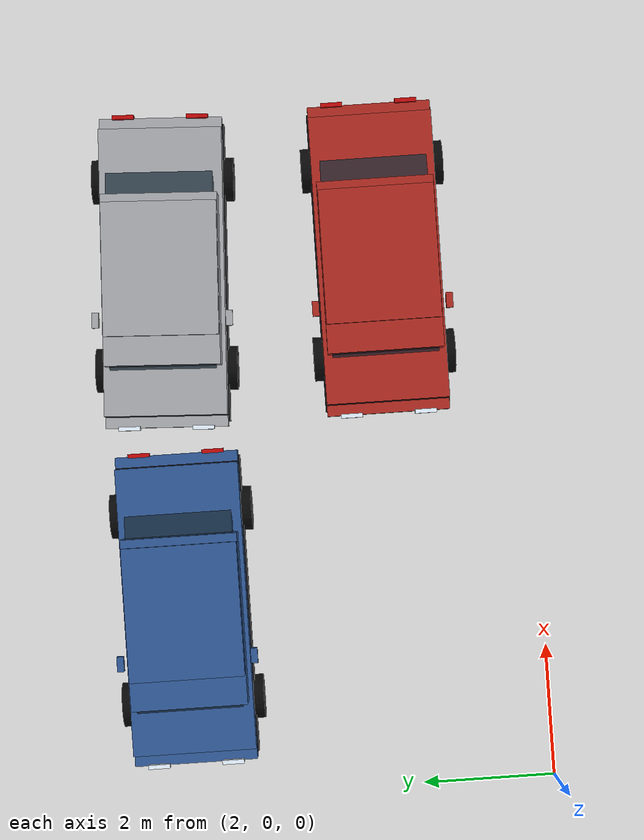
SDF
<sdf version="1.7">
 <world name="ev_car_carrier_deck_world">
  <model name="ev_15">
   <static>true</static>
   <pose>10.0000 2.2000 0.2000 0.0000 0.0000 0.0000</pose>
   <link name="vehicle">
    <collision name="chassis_collision">
     <pose>0.0000 0.0000 0.4800 0.0000 0.0000 0.0000</pose>
     <geometry><box><size>4.45 1.86 0.32</size></box></geometry>
    </collision>
    <visual name="chassis_visual">
     <pose>0.0000 0.0000 0.4800 0.0000 0.0000 0.0000</pose>
     <geometry><box><size>4.45 1.86 0.32</size></box></geometry>
     <material><ambient>0.08 0.08 0.09 1</ambient><diffuse>0.08 0.08 0.09 1</diffuse></material>
    </visual>
    <collision name="lower_body_collision">
     <pose>0.0000 0.0000 0.7800 0.0000 0.0000 0.0000</pose>
     <geometry><box><size>4.25 1.82 0.55</size></box></geometry>
    </collision>
    <visual name="lower_body_visual">
     <pose>0.0000 0.0000 0.7800 0.0000 0.0000 0.0000</pose>
     <geometry><box><size>4.25 1.82 0.55</size></box></geometry>
     <material><ambient>0.68 0.16 0.12 1</ambient><diffuse>0.68 0.16 0.12 1</diffuse></material>
    </visual>
    <collision name="cabin_collision">
     <pose>-0.1500 0.0000 1.2500 0.0000 0.0000 0.0000</pose>
     <geometry><box><size>2.5 1.7 0.65</size></box></geometry>
    </collision>
    <visual name="cabin_visual">
     <pose>-0.1500 0.0000 1.2500 0.0000 0.0000 0.0000</pose>
     <geometry><box><size>2.5 1.7 0.65</size></box></geometry>
     <material><ambient>0.68 0.16 0.12 1</ambient><diffuse>0.68 0.16 0.12 1</diffuse></material>
    </visual>
    <visual name="windshield_visual">
     <pose>-1.0500 0.0000 1.3000 0.0000 -0.4000 0.0000</pose>
     <geometry><box><size>0.7 1.56 0.42</size></box></geometry>
     <material><ambient>0.1 0.17 0.22 0.75</ambient><diffuse>0.1 0.17 0.22 0.75</diffuse></material>
    </visual>
    <visual name="rear_glass_visual">
     <pose>1.1000 0.0000 1.2800 0.0000 0.3800 0.0000</pose>
     <geometry><box><size>0.55 1.56 0.4</size></box></geometry>
     <material><ambient>0.1 0.17 0.22 0.75</ambient><diffuse>0.1 0.17 0.22 0.75</diffuse></material>
    </visual>
    <collision name="roof_collision">
     <pose>0.0000 0.0000 1.6200 0.0000 0.0000 0.0000</pose>
     <geometry><box><size>1.95 1.68 0.1</size></box></geometry>
    </collision>
    <visual name="roof_visual">
     <pose>0.0000 0.0000 1.6200 0.0000 0.0000 0.0000</pose>
     <geometry><box><size>1.95 1.68 0.1</size></box></geometry>
     <material><ambient>0.68 0.16 0.12 1</ambient><diffuse>0.68 0.16 0.12 1</diffuse></material>
    </visual>
    <collision name="battery_pack_collision">
     <pose>0.1000 0.0000 0.3000 0.0000 0.0000 0.0000</pose>
     <geometry><box><size>2.75 1.45 0.16</size></box></geometry>
    </collision>
    <visual name="battery_pack_visual">
     <pose>0.1000 0.0000 0.3000 0.0000 0.0000 0.0000</pose>
     <geometry><box><size>2.75 1.45 0.16</size></box></geometry>
     <material><ambient>0.16 0.18 0.19 1</ambient><diffuse>0.16 0.18 0.19 1</diffuse></material>
    </visual>
    <collision name="front_bumper_collision">
     <pose>-2.2200 0.0000 0.7000 0.0000 0.0000 0.0000</pose>
     <geometry><box><size>0.16 1.82 0.34</size></box></geometry>
    </collision>
    <visual name="front_bumper_visual">
     <pose>-2.2200 0.0000 0.7000 0.0000 0.0000 0.0000</pose>
     <geometry><box><size>0.16 1.82 0.34</size></box></geometry>
     <material><ambient>0.68 0.16 0.12 1</ambient><diffuse>0.68 0.16 0.12 1</diffuse></material>
    </visual>
    <collision name="rear_bumper_collision">
     <pose>2.2200 0.0000 0.7000 0.0000 0.0000 0.0000</pose>
     <geometry><box><size>0.16 1.82 0.34</size></box></geometry>
    </collision>
    <visual name="rear_bumper_visual">
     <pose>2.2200 0.0000 0.7000 0.0000 0.0000 0.0000</pose>
     <geometry><box><size>0.16 1.82 0.34</size></box></geometry>
     <material><ambient>0.68 0.16 0.12 1</ambient><diffuse>0.68 0.16 0.12 1</diffuse></material>
    </visual>
    <collision name="wheel_0_0_collision">
     <pose>-1.4200 -0.9600 0.4300 1.5708 0.0000 0.0000</pose>
     <geometry><cylinder><radius>0.33</radius><length>0.2</length></cylinder></geometry>
    </collision>
    <visual name="wheel_0_0_visual">
     <pose>-1.4200 -0.9600 0.4300 1.5708 0.0000 0.0000</pose>
     <geometry><cylinder><radius>0.33</radius><length>0.2</length></cylinder></geometry>
     <material><ambient>0.035 0.035 0.035 1</ambient><diffuse>0.035 0.035 0.035 1</diffuse></material>
    </visual>
    <visual name="rim_0_0_visual">
     <pose>-1.4200 -0.9600 0.4300 1.5708 0.0000 0.0000</pose>
     <geometry><cylinder><radius>0.18</radius><length>0.205</length></cylinder></geometry>
     <material><ambient>0.45 0.47 0.5 1</ambient><diffuse>0.45 0.47 0.5 1</diffuse></material>
    </visual>
    <collision name="wheel_0_1_collision">
     <pose>-1.4200 0.9600 0.4300 1.5708 0.0000 0.0000</pose>
     <geometry><cylinder><radius>0.33</radius><length>0.2</length></cylinder></geometry>
    </collision>
    <visual name="wheel_0_1_visual">
     <pose>-1.4200 0.9600 0.4300 1.5708 0.0000 0.0000</pose>
     <geometry><cylinder><radius>0.33</radius><length>0.2</length></cylinder></geometry>
     <material><ambient>0.035 0.035 0.035 1</ambient><diffuse>0.035 0.035 0.035 1</diffuse></material>
    </visual>
    <visual name="rim_0_1_visual">
     <pose>-1.4200 0.9600 0.4300 1.5708 0.0000 0.0000</pose>
     <geometry><cylinder><radius>0.18</radius><length>0.205</length></cylinder></geometry>
     <material><ambient>0.45 0.47 0.5 1</ambient><diffuse>0.45 0.47 0.5 1</diffuse></material>
    </visual>
    <collision name="wheel_1_0_collision">
     <pose>1.4200 -0.9600 0.4300 1.5708 0.0000 0.0000</pose>
     <geometry><cylinder><radius>0.33</radius><length>0.2</length></cylinder></geometry>
    </collision>
    <visual name="wheel_1_0_visual">
     <pose>1.4200 -0.9600 0.4300 1.5708 0.0000 0.0000</pose>
     <geometry><cylinder><radius>0.33</radius><length>0.2</length></cylinder></geometry>
     <material><ambient>0.035 0.035 0.035 1</ambient><diffuse>0.035 0.035 0.035 1</diffuse></material>
    </visual>
    <visual name="rim_1_0_visual">
     <pose>1.4200 -0.9600 0.4300 1.5708 0.0000 0.0000</pose>
     <geometry><cylinder><radius>0.18</radius><length>0.205</length></cylinder></geometry>
     <material><ambient>0.45 0.47 0.5 1</ambient><diffuse>0.45 0.47 0.5 1</diffuse></material>
    </visual>
    <collision name="wheel_1_1_collision">
     <pose>1.4200 0.9600 0.4300 1.5708 0.0000 0.0000</pose>
     <geometry><cylinder><radius>0.33</radius><length>0.2</length></cylinder></geometry>
    </collision>
    <visual name="wheel_1_1_visual">
     <pose>1.4200 0.9600 0.4300 1.5708 0.0000 0.0000</pose>
     <geometry><cylinder><radius>0.33</radius><length>0.2</length></cylinder></geometry>
     <material><ambient>0.035 0.035 0.035 1</ambient><diffuse>0.035 0.035 0.035 1</diffuse></material>
    </visual>
    <visual name="rim_1_1_visual">
     <pose>1.4200 0.9600 0.4300 1.5708 0.0000 0.0000</pose>
     <geometry><cylinder><radius>0.18</radius><length>0.205</length></cylinder></geometry>
     <material><ambient>0.45 0.47 0.5 1</ambient><diffuse>0.45 0.47 0.5 1</diffuse></material>
    </visual>
    <visual name="headlight_l_visual">
     <pose>-2.3100 -0.5500 0.8800 0.0000 0.0000 0.0000</pose>
     <geometry><box><size>0.06 0.32 0.18</size></box></geometry>
     <material><ambient>0.9 0.95 1.0 1</ambient><diffuse>0.9 0.95 1.0 1</diffuse></material>
    </visual>
    <visual name="headlight_r_visual">
     <pose>-2.3100 0.5500 0.8800 0.0000 0.0000 0.0000</pose>
     <geometry><box><size>0.06 0.32 0.18</size></box></geometry>
     <material><ambient>0.9 0.95 1.0 1</ambient><diffuse>0.9 0.95 1.0 1</diffuse></material>
    </visual>
    <visual name="taillight_l_visual">
     <pose>2.3100 -0.5500 0.8600 0.0000 0.0000 0.0000</pose>
     <geometry><box><size>0.06 0.32 0.17</size></box></geometry>
     <material><ambient>0.75 0.03 0.03 1</ambient><diffuse>0.75 0.03 0.03 1</diffuse></material>
    </visual>
    <visual name="taillight_r_visual">
     <pose>2.3100 0.5500 0.8600 0.0000 0.0000 0.0000</pose>
     <geometry><box><size>0.06 0.32 0.17</size></box></geometry>
     <material><ambient>0.75 0.03 0.03 1</ambient><diffuse>0.75 0.03 0.03 1</diffuse></material>
    </visual>
    <collision name="mirror_l_collision">
     <pose>-0.7200 -0.9800 1.3000 0.0000 0.0000 0.0000</pose>
     <geometry><box><size>0.22 0.1 0.12</size></box></geometry>
    </collision>
    <visual name="mirror_l_visual">
     <pose>-0.7200 -0.9800 1.3000 0.0000 0.0000 0.0000</pose>
     <geometry><box><size>0.22 0.1 0.12</size></box></geometry>
     <material><ambient>0.68 0.16 0.12 1</ambient><diffuse>0.68 0.16 0.12 1</diffuse></material>
    </visual>
    <collision name="mirror_r_collision">
     <pose>-0.7200 0.9800 1.3000 0.0000 0.0000 0.0000</pose>
     <geometry><box><size>0.22 0.1 0.12</size></box></geometry>
    </collision>
    <visual name="mirror_r_visual">
     <pose>-0.7200 0.9800 1.3000 0.0000 0.0000 0.0000</pose>
     <geometry><box><size>0.22 0.1 0.12</size></box></geometry>
     <material><ambient>0.68 0.16 0.12 1</ambient><diffuse>0.68 0.16 0.12 1</diffuse></material>
    </visual>
   </link>
  </model>
  <model name="ev_19">
   <static>true</static>
   <pose>5.0000 5.4000 0.2000 0.0000 0.0000 0.0000</pose>
   <link name="vehicle">
    <collision name="chassis_collision">
     <pose>0.0000 0.0000 0.4800 0.0000 0.0000 0.0000</pose>
     <geometry><box><size>4.45 1.86 0.32</size></box></geometry>
    </collision>
    <visual name="chassis_visual">
     <pose>0.0000 0.0000 0.4800 0.0000 0.0000 0.0000</pose>
     <geometry><box><size>4.45 1.86 0.32</size></box></geometry>
     <material><ambient>0.08 0.08 0.09 1</ambient><diffuse>0.08 0.08 0.09 1</diffuse></material>
    </visual>
    <collision name="lower_body_collision">
     <pose>0.0000 0.0000 0.7800 0.0000 0.0000 0.0000</pose>
     <geometry><box><size>4.25 1.82 0.55</size></box></geometry>
    </collision>
    <visual name="lower_body_visual">
     <pose>0.0000 0.0000 0.7800 0.0000 0.0000 0.0000</pose>
     <geometry><box><size>4.25 1.82 0.55</size></box></geometry>
     <material><ambient>0.18 0.34 0.58 1</ambient><diffuse>0.18 0.34 0.58 1</diffuse></material>
    </visual>
    <collision name="cabin_collision">
     <pose>-0.1500 0.0000 1.2500 0.0000 0.0000 0.0000</pose>
     <geometry><box><size>2.5 1.7 0.65</size></box></geometry>
    </collision>
    <visual name="cabin_visual">
     <pose>-0.1500 0.0000 1.2500 0.0000 0.0000 0.0000</pose>
     <geometry><box><size>2.5 1.7 0.65</size></box></geometry>
     <material><ambient>0.18 0.34 0.58 1</ambient><diffuse>0.18 0.34 0.58 1</diffuse></material>
    </visual>
    <visual name="windshield_visual">
     <pose>-1.0500 0.0000 1.3000 0.0000 -0.4000 0.0000</pose>
     <geometry><box><size>0.7 1.56 0.42</size></box></geometry>
     <material><ambient>0.1 0.17 0.22 0.75</ambient><diffuse>0.1 0.17 0.22 0.75</diffuse></material>
    </visual>
    <visual name="rear_glass_visual">
     <pose>1.1000 0.0000 1.2800 0.0000 0.3800 0.0000</pose>
     <geometry><box><size>0.55 1.56 0.4</size></box></geometry>
     <material><ambient>0.1 0.17 0.22 0.75</ambient><diffuse>0.1 0.17 0.22 0.75</diffuse></material>
    </visual>
    <collision name="roof_collision">
     <pose>0.0000 0.0000 1.6200 0.0000 0.0000 0.0000</pose>
     <geometry><box><size>1.95 1.68 0.1</size></box></geometry>
    </collision>
    <visual name="roof_visual">
     <pose>0.0000 0.0000 1.6200 0.0000 0.0000 0.0000</pose>
     <geometry><box><size>1.95 1.68 0.1</size></box></geometry>
     <material><ambient>0.18 0.34 0.58 1</ambient><diffuse>0.18 0.34 0.58 1</diffuse></material>
    </visual>
    <collision name="battery_pack_collision">
     <pose>0.1000 0.0000 0.3000 0.0000 0.0000 0.0000</pose>
     <geometry><box><size>2.75 1.45 0.16</size></box></geometry>
    </collision>
    <visual name="battery_pack_visual">
     <pose>0.1000 0.0000 0.3000 0.0000 0.0000 0.0000</pose>
     <geometry><box><size>2.75 1.45 0.16</size></box></geometry>
     <material><ambient>0.16 0.18 0.19 1</ambient><diffuse>0.16 0.18 0.19 1</diffuse></material>
    </visual>
    <collision name="front_bumper_collision">
     <pose>-2.2200 0.0000 0.7000 0.0000 0.0000 0.0000</pose>
     <geometry><box><size>0.16 1.82 0.34</size></box></geometry>
    </collision>
    <visual name="front_bumper_visual">
     <pose>-2.2200 0.0000 0.7000 0.0000 0.0000 0.0000</pose>
     <geometry><box><size>0.16 1.82 0.34</size></box></geometry>
     <material><ambient>0.18 0.34 0.58 1</ambient><diffuse>0.18 0.34 0.58 1</diffuse></material>
    </visual>
    <collision name="rear_bumper_collision">
     <pose>2.2200 0.0000 0.7000 0.0000 0.0000 0.0000</pose>
     <geometry><box><size>0.16 1.82 0.34</size></box></geometry>
    </collision>
    <visual name="rear_bumper_visual">
     <pose>2.2200 0.0000 0.7000 0.0000 0.0000 0.0000</pose>
     <geometry><box><size>0.16 1.82 0.34</size></box></geometry>
     <material><ambient>0.18 0.34 0.58 1</ambient><diffuse>0.18 0.34 0.58 1</diffuse></material>
    </visual>
    <collision name="wheel_0_0_collision">
     <pose>-1.4200 -0.9600 0.4300 1.5708 0.0000 0.0000</pose>
     <geometry><cylinder><radius>0.33</radius><length>0.2</length></cylinder></geometry>
    </collision>
    <visual name="wheel_0_0_visual">
     <pose>-1.4200 -0.9600 0.4300 1.5708 0.0000 0.0000</pose>
     <geometry><cylinder><radius>0.33</radius><length>0.2</length></cylinder></geometry>
     <material><ambient>0.035 0.035 0.035 1</ambient><diffuse>0.035 0.035 0.035 1</diffuse></material>
    </visual>
    <visual name="rim_0_0_visual">
     <pose>-1.4200 -0.9600 0.4300 1.5708 0.0000 0.0000</pose>
     <geometry><cylinder><radius>0.18</radius><length>0.205</length></cylinder></geometry>
     <material><ambient>0.45 0.47 0.5 1</ambient><diffuse>0.45 0.47 0.5 1</diffuse></material>
    </visual>
    <collision name="wheel_0_1_collision">
     <pose>-1.4200 0.9600 0.4300 1.5708 0.0000 0.0000</pose>
     <geometry><cylinder><radius>0.33</radius><length>0.2</length></cylinder></geometry>
    </collision>
    <visual name="wheel_0_1_visual">
     <pose>-1.4200 0.9600 0.4300 1.5708 0.0000 0.0000</pose>
     <geometry><cylinder><radius>0.33</radius><length>0.2</length></cylinder></geometry>
     <material><ambient>0.035 0.035 0.035 1</ambient><diffuse>0.035 0.035 0.035 1</diffuse></material>
    </visual>
    <visual name="rim_0_1_visual">
     <pose>-1.4200 0.9600 0.4300 1.5708 0.0000 0.0000</pose>
     <geometry><cylinder><radius>0.18</radius><length>0.205</length></cylinder></geometry>
     <material><ambient>0.45 0.47 0.5 1</ambient><diffuse>0.45 0.47 0.5 1</diffuse></material>
    </visual>
    <collision name="wheel_1_0_collision">
     <pose>1.4200 -0.9600 0.4300 1.5708 0.0000 0.0000</pose>
     <geometry><cylinder><radius>0.33</radius><length>0.2</length></cylinder></geometry>
    </collision>
    <visual name="wheel_1_0_visual">
     <pose>1.4200 -0.9600 0.4300 1.5708 0.0000 0.0000</pose>
     <geometry><cylinder><radius>0.33</radius><length>0.2</length></cylinder></geometry>
     <material><ambient>0.035 0.035 0.035 1</ambient><diffuse>0.035 0.035 0.035 1</diffuse></material>
    </visual>
    <visual name="rim_1_0_visual">
     <pose>1.4200 -0.9600 0.4300 1.5708 0.0000 0.0000</pose>
     <geometry><cylinder><radius>0.18</radius><length>0.205</length></cylinder></geometry>
     <material><ambient>0.45 0.47 0.5 1</ambient><diffuse>0.45 0.47 0.5 1</diffuse></material>
    </visual>
    <collision name="wheel_1_1_collision">
     <pose>1.4200 0.9600 0.4300 1.5708 0.0000 0.0000</pose>
     <geometry><cylinder><radius>0.33</radius><length>0.2</length></cylinder></geometry>
    </collision>
    <visual name="wheel_1_1_visual">
     <pose>1.4200 0.9600 0.4300 1.5708 0.0000 0.0000</pose>
     <geometry><cylinder><radius>0.33</radius><length>0.2</length></cylinder></geometry>
     <material><ambient>0.035 0.035 0.035 1</ambient><diffuse>0.035 0.035 0.035 1</diffuse></material>
    </visual>
    <visual name="rim_1_1_visual">
     <pose>1.4200 0.9600 0.4300 1.5708 0.0000 0.0000</pose>
     <geometry><cylinder><radius>0.18</radius><length>0.205</length></cylinder></geometry>
     <material><ambient>0.45 0.47 0.5 1</ambient><diffuse>0.45 0.47 0.5 1</diffuse></material>
    </visual>
    <visual name="headlight_l_visual">
     <pose>-2.3100 -0.5500 0.8800 0.0000 0.0000 0.0000</pose>
     <geometry><box><size>0.06 0.32 0.18</size></box></geometry>
     <material><ambient>0.9 0.95 1.0 1</ambient><diffuse>0.9 0.95 1.0 1</diffuse></material>
    </visual>
    <visual name="headlight_r_visual">
     <pose>-2.3100 0.5500 0.8800 0.0000 0.0000 0.0000</pose>
     <geometry><box><size>0.06 0.32 0.18</size></box></geometry>
     <material><ambient>0.9 0.95 1.0 1</ambient><diffuse>0.9 0.95 1.0 1</diffuse></material>
    </visual>
    <visual name="taillight_l_visual">
     <pose>2.3100 -0.5500 0.8600 0.0000 0.0000 0.0000</pose>
     <geometry><box><size>0.06 0.32 0.17</size></box></geometry>
     <material><ambient>0.75 0.03 0.03 1</ambient><diffuse>0.75 0.03 0.03 1</diffuse></material>
    </visual>
    <visual name="taillight_r_visual">
     <pose>2.3100 0.5500 0.8600 0.0000 0.0000 0.0000</pose>
     <geometry><box><size>0.06 0.32 0.17</size></box></geometry>
     <material><ambient>0.75 0.03 0.03 1</ambient><diffuse>0.75 0.03 0.03 1</diffuse></material>
    </visual>
    <collision name="mirror_l_collision">
     <pose>-0.7200 -0.9800 1.3000 0.0000 0.0000 0.0000</pose>
     <geometry><box><size>0.22 0.1 0.12</size></box></geometry>
    </collision>
    <visual name="mirror_l_visual">
     <pose>-0.7200 -0.9800 1.3000 0.0000 0.0000 0.0000</pose>
     <geometry><box><size>0.22 0.1 0.12</size></box></geometry>
     <material><ambient>0.18 0.34 0.58 1</ambient><diffuse>0.18 0.34 0.58 1</diffuse></material>
    </visual>
    <collision name="mirror_r_collision">
     <pose>-0.7200 0.9800 1.3000 0.0000 0.0000 0.0000</pose>
     <geometry><box><size>0.22 0.1 0.12</size></box></geometry>
    </collision>
    <visual name="mirror_r_visual">
     <pose>-0.7200 0.9800 1.3000 0.0000 0.0000 0.0000</pose>
     <geometry><box><size>0.22 0.1 0.12</size></box></geometry>
     <material><ambient>0.18 0.34 0.58 1</ambient><diffuse>0.18 0.34 0.58 1</diffuse></material>
    </visual>
   </link>
  </model>
  <model name="ev_20">
   <static>true</static>
   <pose>10.0000 5.4000 0.2000 0.0000 0.0000 -0.0450</pose>
   <link name="vehicle">
    <collision name="chassis_collision">
     <pose>0.0000 0.0000 0.4800 0.0000 0.0000 0.0000</pose>
     <geometry><box><size>4.45 1.86 0.32</size></box></geometry>
    </collision>
    <visual name="chassis_visual">
     <pose>0.0000 0.0000 0.4800 0.0000 0.0000 0.0000</pose>
     <geometry><box><size>4.45 1.86 0.32</size></box></geometry>
     <material><ambient>0.08 0.08 0.09 1</ambient><diffuse>0.08 0.08 0.09 1</diffuse></material>
    </visual>
    <collision name="lower_body_collision">
     <pose>0.0000 0.0000 0.7800 0.0000 0.0000 0.0000</pose>
     <geometry><box><size>4.25 1.82 0.55</size></box></geometry>
    </collision>
    <visual name="lower_body_visual">
     <pose>0.0000 0.0000 0.7800 0.0000 0.0000 0.0000</pose>
     <geometry><box><size>4.25 1.82 0.55</size></box></geometry>
     <material><ambient>0.65 0.66 0.68 1</ambient><diffuse>0.65 0.66 0.68 1</diffuse></material>
    </visual>
    <collision name="cabin_collision">
     <pose>-0.1500 0.0000 1.2500 0.0000 0.0000 0.0000</pose>
     <geometry><box><size>2.5 1.7 0.65</size></box></geometry>
    </collision>
    <visual name="cabin_visual">
     <pose>-0.1500 0.0000 1.2500 0.0000 0.0000 0.0000</pose>
     <geometry><box><size>2.5 1.7 0.65</size></box></geometry>
     <material><ambient>0.65 0.66 0.68 1</ambient><diffuse>0.65 0.66 0.68 1</diffuse></material>
    </visual>
    <visual name="windshield_visual">
     <pose>-1.0500 0.0000 1.3000 0.0000 -0.4000 0.0000</pose>
     <geometry><box><size>0.7 1.56 0.42</size></box></geometry>
     <material><ambient>0.1 0.17 0.22 0.75</ambient><diffuse>0.1 0.17 0.22 0.75</diffuse></material>
    </visual>
    <visual name="rear_glass_visual">
     <pose>1.1000 0.0000 1.2800 0.0000 0.3800 0.0000</pose>
     <geometry><box><size>0.55 1.56 0.4</size></box></geometry>
     <material><ambient>0.1 0.17 0.22 0.75</ambient><diffuse>0.1 0.17 0.22 0.75</diffuse></material>
    </visual>
    <collision name="roof_collision">
     <pose>0.0000 0.0000 1.6200 0.0000 0.0000 0.0000</pose>
     <geometry><box><size>1.95 1.68 0.1</size></box></geometry>
    </collision>
    <visual name="roof_visual">
     <pose>0.0000 0.0000 1.6200 0.0000 0.0000 0.0000</pose>
     <geometry><box><size>1.95 1.68 0.1</size></box></geometry>
     <material><ambient>0.65 0.66 0.68 1</ambient><diffuse>0.65 0.66 0.68 1</diffuse></material>
    </visual>
    <collision name="battery_pack_collision">
     <pose>0.1000 0.0000 0.3000 0.0000 0.0000 0.0000</pose>
     <geometry><box><size>2.75 1.45 0.16</size></box></geometry>
    </collision>
    <visual name="battery_pack_visual">
     <pose>0.1000 0.0000 0.3000 0.0000 0.0000 0.0000</pose>
     <geometry><box><size>2.75 1.45 0.16</size></box></geometry>
     <material><ambient>0.16 0.18 0.19 1</ambient><diffuse>0.16 0.18 0.19 1</diffuse></material>
    </visual>
    <collision name="front_bumper_collision">
     <pose>-2.2200 0.0000 0.7000 0.0000 0.0000 0.0000</pose>
     <geometry><box><size>0.16 1.82 0.34</size></box></geometry>
    </collision>
    <visual name="front_bumper_visual">
     <pose>-2.2200 0.0000 0.7000 0.0000 0.0000 0.0000</pose>
     <geometry><box><size>0.16 1.82 0.34</size></box></geometry>
     <material><ambient>0.65 0.66 0.68 1</ambient><diffuse>0.65 0.66 0.68 1</diffuse></material>
    </visual>
    <collision name="rear_bumper_collision">
     <pose>2.2200 0.0000 0.7000 0.0000 0.0000 0.0000</pose>
     <geometry><box><size>0.16 1.82 0.34</size></box></geometry>
    </collision>
    <visual name="rear_bumper_visual">
     <pose>2.2200 0.0000 0.7000 0.0000 0.0000 0.0000</pose>
     <geometry><box><size>0.16 1.82 0.34</size></box></geometry>
     <material><ambient>0.65 0.66 0.68 1</ambient><diffuse>0.65 0.66 0.68 1</diffuse></material>
    </visual>
    <collision name="wheel_0_0_collision">
     <pose>-1.4200 -0.9600 0.4300 1.5708 0.0000 0.0000</pose>
     <geometry><cylinder><radius>0.33</radius><length>0.2</length></cylinder></geometry>
    </collision>
    <visual name="wheel_0_0_visual">
     <pose>-1.4200 -0.9600 0.4300 1.5708 0.0000 0.0000</pose>
     <geometry><cylinder><radius>0.33</radius><length>0.2</length></cylinder></geometry>
     <material><ambient>0.035 0.035 0.035 1</ambient><diffuse>0.035 0.035 0.035 1</diffuse></material>
    </visual>
    <visual name="rim_0_0_visual">
     <pose>-1.4200 -0.9600 0.4300 1.5708 0.0000 0.0000</pose>
     <geometry><cylinder><radius>0.18</radius><length>0.205</length></cylinder></geometry>
     <material><ambient>0.45 0.47 0.5 1</ambient><diffuse>0.45 0.47 0.5 1</diffuse></material>
    </visual>
    <collision name="wheel_0_1_collision">
     <pose>-1.4200 0.9600 0.4300 1.5708 0.0000 0.0000</pose>
     <geometry><cylinder><radius>0.33</radius><length>0.2</length></cylinder></geometry>
    </collision>
    <visual name="wheel_0_1_visual">
     <pose>-1.4200 0.9600 0.4300 1.5708 0.0000 0.0000</pose>
     <geometry><cylinder><radius>0.33</radius><length>0.2</length></cylinder></geometry>
     <material><ambient>0.035 0.035 0.035 1</ambient><diffuse>0.035 0.035 0.035 1</diffuse></material>
    </visual>
    <visual name="rim_0_1_visual">
     <pose>-1.4200 0.9600 0.4300 1.5708 0.0000 0.0000</pose>
     <geometry><cylinder><radius>0.18</radius><length>0.205</length></cylinder></geometry>
     <material><ambient>0.45 0.47 0.5 1</ambient><diffuse>0.45 0.47 0.5 1</diffuse></material>
    </visual>
    <collision name="wheel_1_0_collision">
     <pose>1.4200 -0.9600 0.4300 1.5708 0.0000 0.0000</pose>
     <geometry><cylinder><radius>0.33</radius><length>0.2</length></cylinder></geometry>
    </collision>
    <visual name="wheel_1_0_visual">
     <pose>1.4200 -0.9600 0.4300 1.5708 0.0000 0.0000</pose>
     <geometry><cylinder><radius>0.33</radius><length>0.2</length></cylinder></geometry>
     <material><ambient>0.035 0.035 0.035 1</ambient><diffuse>0.035 0.035 0.035 1</diffuse></material>
    </visual>
    <visual name="rim_1_0_visual">
     <pose>1.4200 -0.9600 0.4300 1.5708 0.0000 0.0000</pose>
     <geometry><cylinder><radius>0.18</radius><length>0.205</length></cylinder></geometry>
     <material><ambient>0.45 0.47 0.5 1</ambient><diffuse>0.45 0.47 0.5 1</diffuse></material>
    </visual>
    <collision name="wheel_1_1_collision">
     <pose>1.4200 0.9600 0.4300 1.5708 0.0000 0.0000</pose>
     <geometry><cylinder><radius>0.33</radius><length>0.2</length></cylinder></geometry>
    </collision>
    <visual name="wheel_1_1_visual">
     <pose>1.4200 0.9600 0.4300 1.5708 0.0000 0.0000</pose>
     <geometry><cylinder><radius>0.33</radius><length>0.2</length></cylinder></geometry>
     <material><ambient>0.035 0.035 0.035 1</ambient><diffuse>0.035 0.035 0.035 1</diffuse></material>
    </visual>
    <visual name="rim_1_1_visual">
     <pose>1.4200 0.9600 0.4300 1.5708 0.0000 0.0000</pose>
     <geometry><cylinder><radius>0.18</radius><length>0.205</length></cylinder></geometry>
     <material><ambient>0.45 0.47 0.5 1</ambient><diffuse>0.45 0.47 0.5 1</diffuse></material>
    </visual>
    <visual name="headlight_l_visual">
     <pose>-2.3100 -0.5500 0.8800 0.0000 0.0000 0.0000</pose>
     <geometry><box><size>0.06 0.32 0.18</size></box></geometry>
     <material><ambient>0.9 0.95 1.0 1</ambient><diffuse>0.9 0.95 1.0 1</diffuse></material>
    </visual>
    <visual name="headlight_r_visual">
     <pose>-2.3100 0.5500 0.8800 0.0000 0.0000 0.0000</pose>
     <geometry><box><size>0.06 0.32 0.18</size></box></geometry>
     <material><ambient>0.9 0.95 1.0 1</ambient><diffuse>0.9 0.95 1.0 1</diffuse></material>
    </visual>
    <visual name="taillight_l_visual">
     <pose>2.3100 -0.5500 0.8600 0.0000 0.0000 0.0000</pose>
     <geometry><box><size>0.06 0.32 0.17</size></box></geometry>
     <material><ambient>0.75 0.03 0.03 1</ambient><diffuse>0.75 0.03 0.03 1</diffuse></material>
    </visual>
    <visual name="taillight_r_visual">
     <pose>2.3100 0.5500 0.8600 0.0000 0.0000 0.0000</pose>
     <geometry><box><size>0.06 0.32 0.17</size></box></geometry>
     <material><ambient>0.75 0.03 0.03 1</ambient><diffuse>0.75 0.03 0.03 1</diffuse></material>
    </visual>
    <collision name="mirror_l_collision">
     <pose>-0.7200 -0.9800 1.3000 0.0000 0.0000 0.0000</pose>
     <geometry><box><size>0.22 0.1 0.12</size></box></geometry>
    </collision>
    <visual name="mirror_l_visual">
     <pose>-0.7200 -0.9800 1.3000 0.0000 0.0000 0.0000</pose>
     <geometry><box><size>0.22 0.1 0.12</size></box></geometry>
     <material><ambient>0.65 0.66 0.68 1</ambient><diffuse>0.65 0.66 0.68 1</diffuse></material>
    </visual>
    <collision name="mirror_r_collision">
     <pose>-0.7200 0.9800 1.3000 0.0000 0.0000 0.0000</pose>
     <geometry><box><size>0.22 0.1 0.12</size></box></geometry>
    </collision>
    <visual name="mirror_r_visual">
     <pose>-0.7200 0.9800 1.3000 0.0000 0.0000 0.0000</pose>
     <geometry><box><size>0.22 0.1 0.12</size></box></geometry>
     <material><ambient>0.65 0.66 0.68 1</ambient><diffuse>0.65 0.66 0.68 1</diffuse></material>
    </visual>
   </link>
  </model>
 </world>
</sdf>
